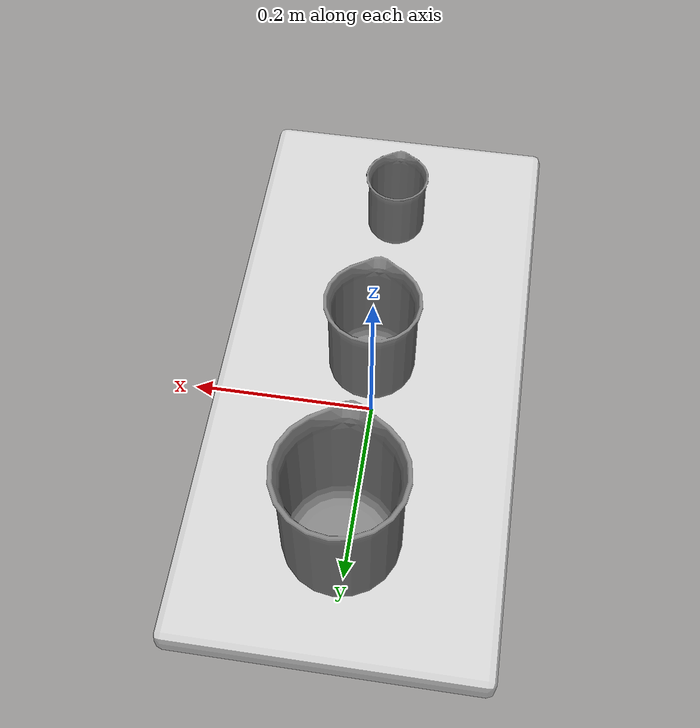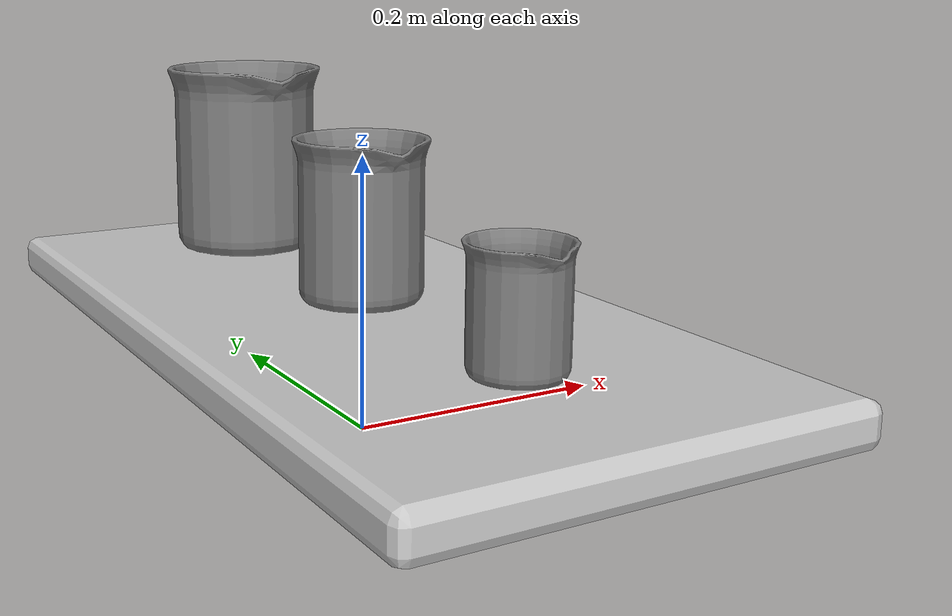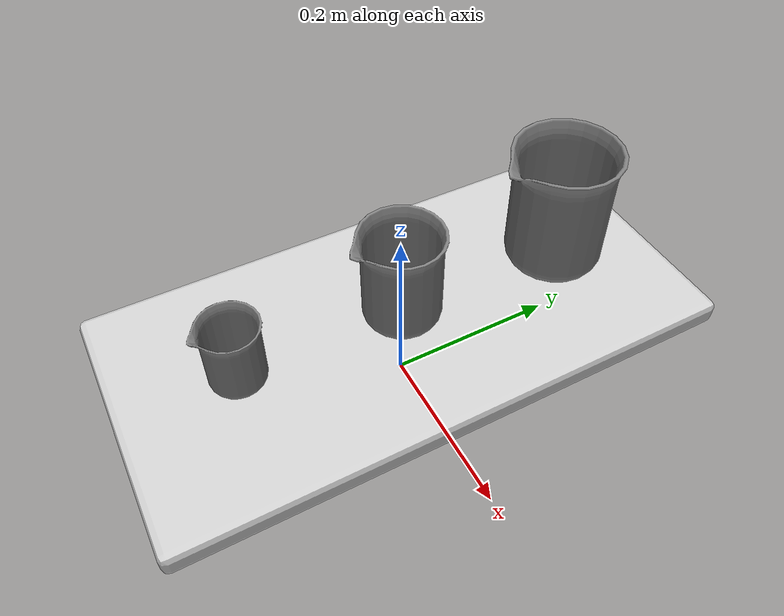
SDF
<?xml version="1.0" ?>
<sdf version="1.5">
  <model name="beakers">
    <static>1</static>
    <link name="link">
      <pose>0 0 0.065 0 0 0</pose>
      <collision name="collision">
        <geometry>
          <mesh>
            <uri>model://beakers/meshes/beakers.dae</uri>
          </mesh>
        </geometry>
      </collision>
      <visual name="visual">
        <geometry>
          <mesh>
            <uri>model://beakers/meshes/beakers.dae</uri>
          </mesh>
        </geometry>
        <transparency>0</transparency>
      </visual>
    </link>
  </model>
</sdf>
